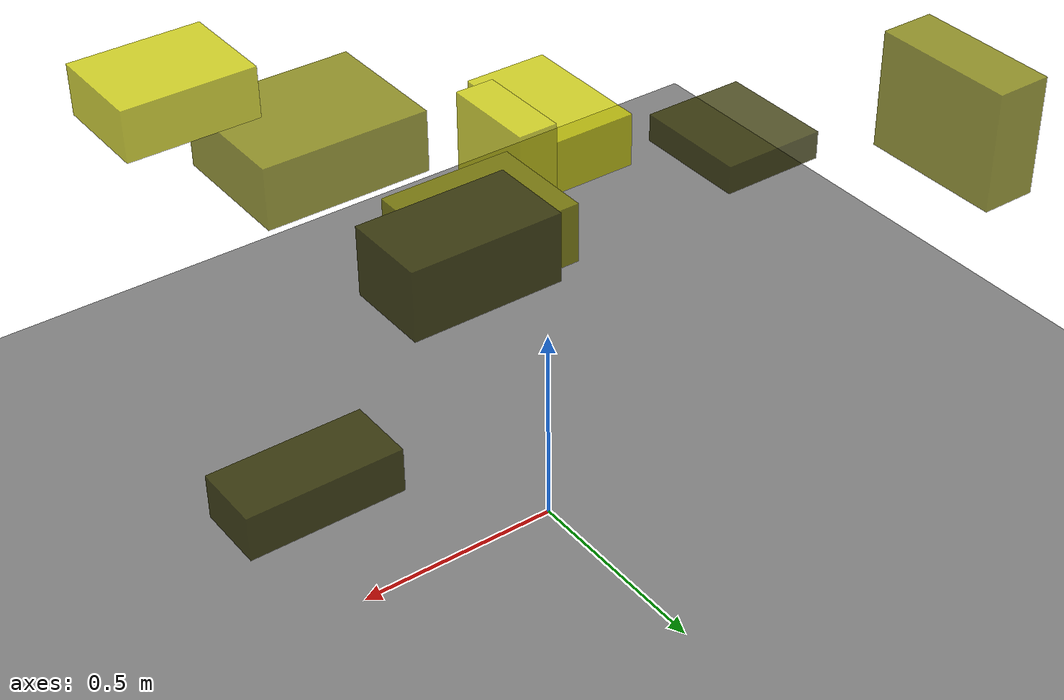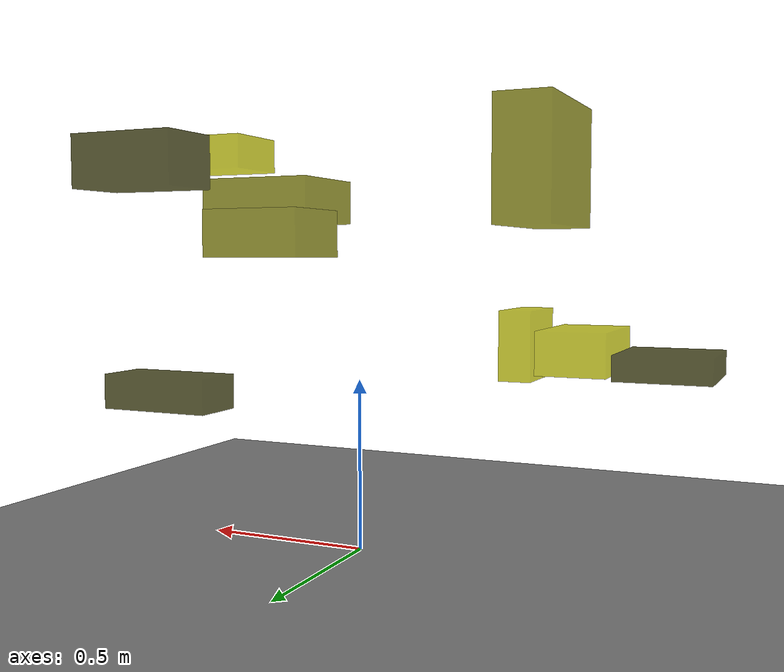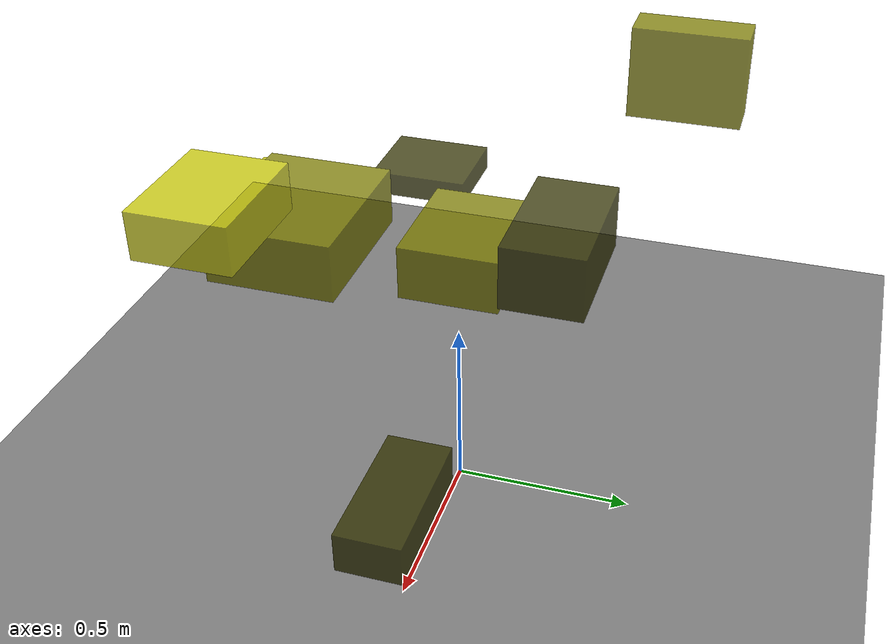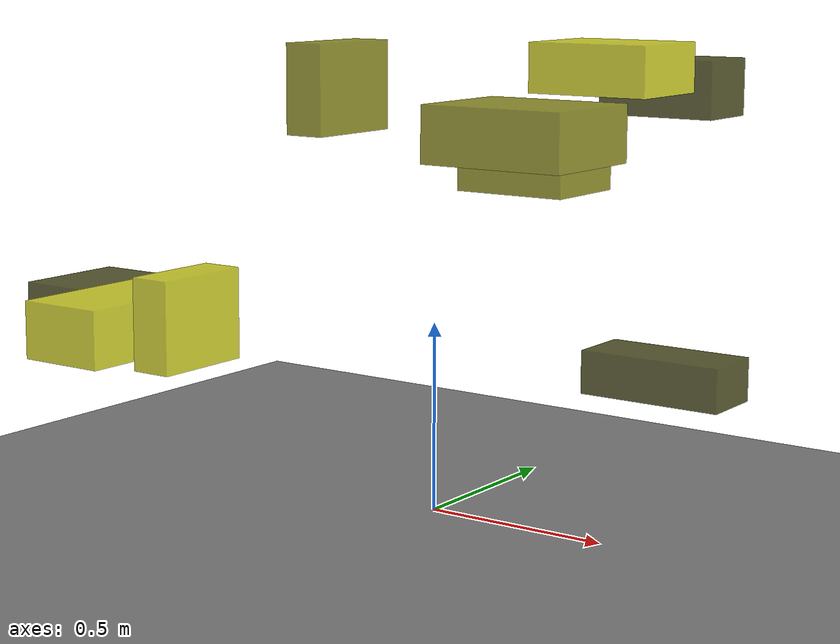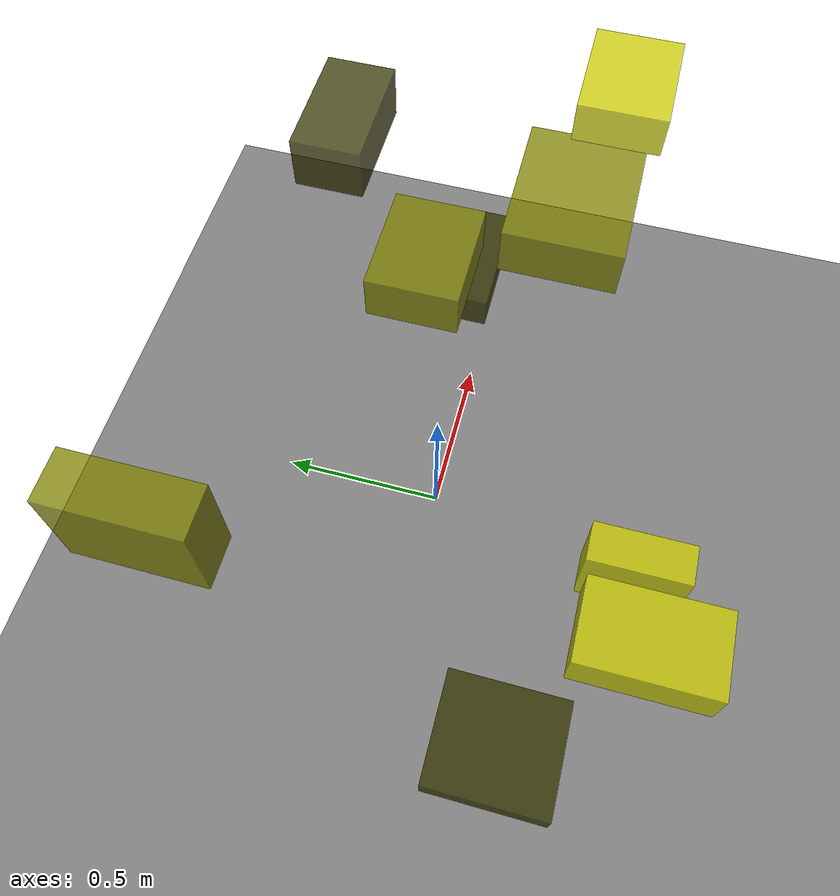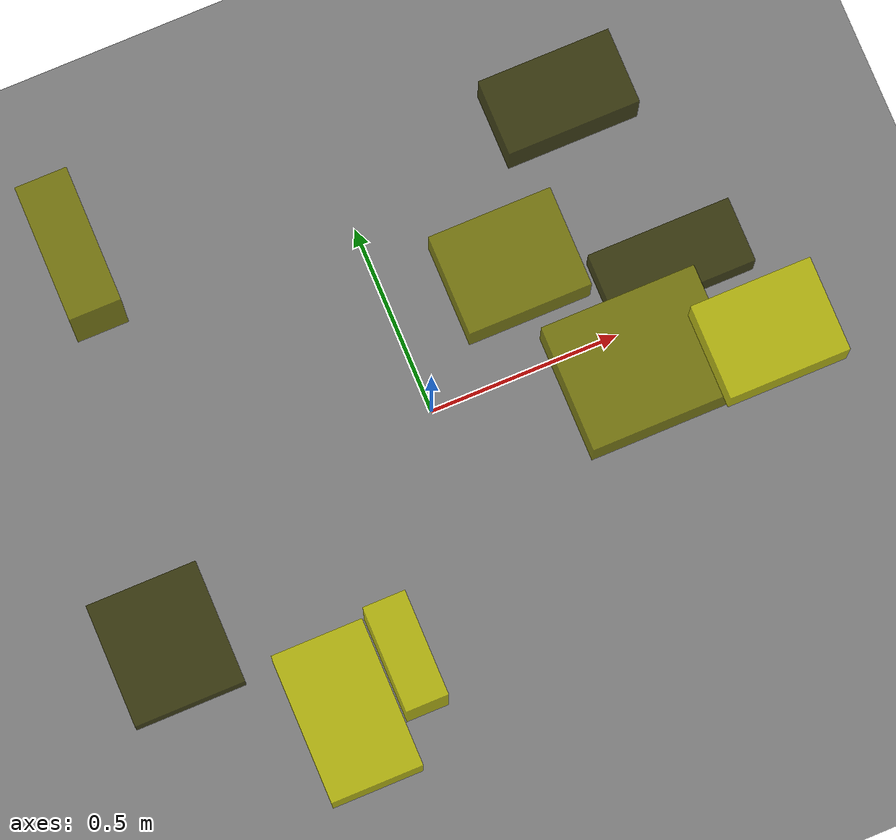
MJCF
<?xml version="1.0"?>
<mujoco model="obstacle_scene">
  <compiler angle="radian" coordinate="local"/>
  <option timestep="0.001" gravity="0 0 -9.81"/>

  <asset>
    <material name="obstacle_mat" rgba="0.8 0.8 0.0 0.8"/>
    <material name="ground_mat" rgba="0.5 0.5 0.5 1"/>
  </asset>

  <worldbody>
    <!-- Ground plane -->
    <geom name="ground" type="plane" size="3 3 0.1" material="ground_mat"/>

    <!-- Obstacles -->
    <body name="obstacle_0" pos="0.468401 0.379134 1.110928">
      <geom name="obs_0" type="box" size="0.158912 0.090885 0.073442" rgba="0.2 0.2 0.0 0.8"/>
    </body>
    <body name="obstacle_1" pos="-0.683148 0.480945 1.053070">
      <geom name="obs_1" type="box" size="0.062652 0.163879 0.133778" rgba="0.5 0.5 0.0 0.8"/>
    </body>
    <body name="obstacle_2" pos="-0.317249 -0.602026 0.570028">
      <geom name="obs_2" type="box" size="0.053084 0.132084 0.114326" rgba="0.8 0.8 0.0 0.8"/>
    </body>
    <body name="obstacle_3" pos="-0.825759 -0.358107 0.542419">
      <geom name="obs_3" type="box" size="0.138974 0.154117 0.037379" rgba="0.2 0.2 0.0 0.8"/>
    </body>
    <body name="obstacle_4" pos="0.415551 -0.242308 1.034049">
      <geom name="obs_4" type="box" size="0.186856 0.151675 0.069594" rgba="0.5 0.5 0.0 0.8"/>
    </body>
    <body name="obstacle_5" pos="0.683231 -0.311964 1.201548">
      <geom name="obs_5" type="box" size="0.144211 0.112902 0.056045" rgba="0.8 0.8 0.0 0.8"/>
    </body>
    <body name="obstacle_6" pos="0.642024 0.046377 0.438224">
      <geom name="obs_6" type="box" size="0.182662 0.082890 0.054102" rgba="0.2 0.2 0.0 0.8"/>
    </body>
    <body name="obstacle_7" pos="0.234663 0.098858 0.922407">
      <geom name="obs_7" type="box" size="0.150700 0.122240 0.068062" rgba="0.5 0.5 0.0 0.8"/>
    </body>
    <body name="obstacle_8" pos="-0.494339 -0.671247 0.548512">
      <geom name="obs_8" type="box" size="0.114922 0.185964 0.071779" rgba="0.8 0.8 0.0 0.8"/>
    </body>
  </worldbody>
</mujoco>
